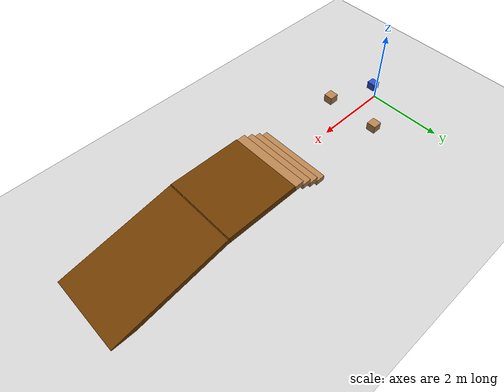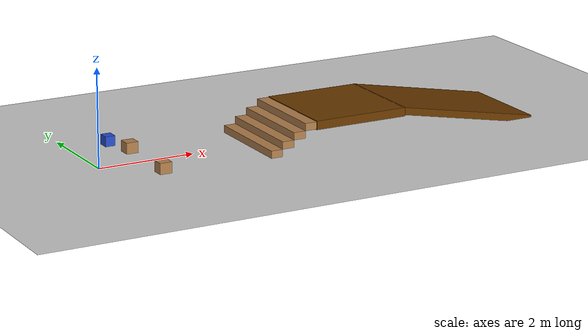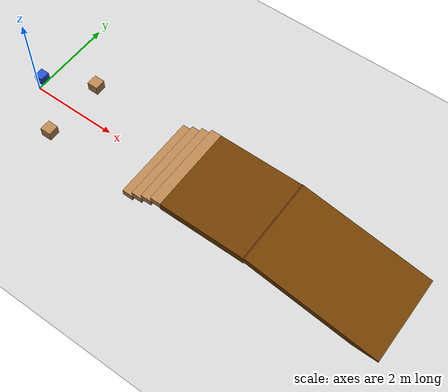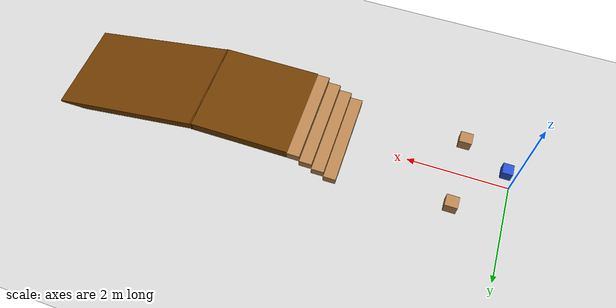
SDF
<?xml version="1.0" ?>
<sdf version="1.5">
    <world name="default">

        <physics type="ode">
        <max_step_size>0.001</max_step_size>
        <real_time_factor>1</real_time_factor>
        <real_time_update_rate>1000</real_time_update_rate>
        <gravity>0 0 -9.81</gravity>
            <ode>
                <solver>
                <type>quick</type>
                <iters>50</iters>
                <sor>1.3</sor>
                </solver>
                <constraints>
                <cfm>0.0</cfm>
                <erp>0.2</erp>
                <contact_max_correcting_vel>10.0</contact_max_correcting_vel>
                <contact_surface_layer>0.001</contact_surface_layer>
                </constraints>
            </ode>
        </physics>

        <scene>
        <sky>
            <clouds>
                <speed>12</speed>
            </clouds>
        </sky>
        </scene>
        <!-- A global light source -->
        <include>
            <uri>model://sun</uri>
        </include>
        <!-- A ground plane -->
        <include>
            <uri>model://ground_plane</uri>
        </include>
        <!-- environment blocks, obstacles or stairs -->

       <model name="static_environment">
        <static>true</static>

    <!-- ##################Box's########################################-->

         <link name="box_1">
                <pose>1 0.75 0.09 0 0 0</pose>
                <collision name="box1_collision">
                    <geometry>
                        <box>
                            <size>0.25 0.25 0.25</size>
                        </box>
                    </geometry>
                </collision>
                <visual name="box1_visual">
                    <geometry>
                        <box>
                            <size>0.25 0.25 0.25</size>
                        </box>
                    </geometry>
                <material>
                <script>
                    <uri>file://media/materials/scripts/gazebo.material</uri>
                    <name>Gazebo/Wood</name>
                </script>
                <ambient>1 1 1 1</ambient>
                </material>
                </visual>
            </link>

            <link name="box_2">
                <pose>1 -0.75 0.09 0 0 0</pose>
                <collision name="box2_collision">
                    <geometry>
                        <box>
                            <size>0.25 0.25 0.25</size>
                        </box>
                    </geometry>
                </collision>
                <visual name="box2_visual">
                    <geometry>
                        <box>
                            <size>0.25 0.25 0.25</size>
                        </box>
                    </geometry>
                    <material>
                    <script>
                        <uri>file://media/materials/scripts/gazebo.material</uri>
                        <name>Gazebo/Wood</name>
                    </script>
                    <ambient>1 1 1 1</ambient>
                    </material>
                </visual>
            </link>

<!-- ##################Stairs########################################-->

            <link name="floor3">
                <pose>5.2 0 0.525 0 0 0</pose>
                <collision name="floor3_collision">
                    <geometry>
                        <box>
                            <size>2 2 0.15</size>
                        </box>
                    </geometry>
                </collision>
                <visual name="floor3_visual">
                    <geometry>
                        <box>
                            <size>2 2 0.18</size>
                        </box>
                    </geometry>
                    <material>
                        <ambient>0.2 0.2 0.2 1.0</ambient>
                        <diffuse>.421 0.225 0.0 1.0</diffuse>
                    </material>
                </visual>
            </link>

        </model>

        <model name='stairs'>
    <pose frame=''>3.7 0.009 0 0 -0 0</pose>
    <link name='Stairs_1'>
      <visual name='Stairs_1_Visual_0'>
        <pose frame=''>-0.375 -0 0.075 0 -0 1.5708</pose>
        <geometry>
          <box>
            <size>2 0.25 0.15</size>
          </box>
        </geometry>
        <material>
          <script>
            <uri>file://media/materials/scripts/gazebo.material</uri>
            <name>Gazebo/Wood</name>
          </script>
          <ambient>1 1 1 1</ambient>
        </material>
        <meta>
          <layer>0</layer>
        </meta>
      </visual>
      <collision name='Stairs_1_Collision_0'>
        <geometry>
          <box>
            <size>2 0.25 0.15</size>
          </box>
        </geometry>
        <pose frame=''>-0.375 -0 0.075 0 -0 1.5708</pose>
      </collision>
      <visual name='Stairs_1_Visual_1'>
        <pose frame=''>-0.125 -0 0.225 0 -0 1.5708</pose>
        <geometry>
          <box>
            <size>2 0.25 0.15</size>
          </box>
        </geometry>
        <material>
          <script>
            <uri>file://media/materials/scripts/gazebo.material</uri>
            <name>Gazebo/Wood</name>
          </script>
          <ambient>1 1 1 1</ambient>
        </material>
        <meta>
          <layer>0</layer>
        </meta>
      </visual>
      <collision name='Stairs_1_Collision_1'>
        <geometry>
          <box>
            <size>2 0.25 0.15</size>
          </box>
        </geometry>
        <pose frame=''>-0.125 -0 0.225 0 -0 1.5708</pose>
      </collision>
      <visual name='Stairs_1_Visual_2'>
        <pose frame=''>0.125 0 0.375 0 -0 1.5708</pose>
        <geometry>
          <box>
            <size>2 0.25 0.15</size>
          </box>
        </geometry>
        <material>
          <script>
            <uri>file://media/materials/scripts/gazebo.material</uri>
            <name>Gazebo/Wood</name>
          </script>
          <ambient>1 1 1 1</ambient>
        </material>
        <meta>
          <layer>0</layer>
        </meta>
      </visual>
      <collision name='Stairs_1_Collision_2'>
        <geometry>
          <box>
            <size>2 0.25 0.15</size>
          </box>
        </geometry>
        <pose frame=''>0.125 0 0.375 0 -0 1.5708</pose>
      </collision>
      <visual name='Stairs_1_Visual_3'>
        <pose frame=''>0.375 0 0.525 0 -0 1.5708</pose>
        <geometry>
          <box>
            <size>2 0.25 0.15</size>
          </box>
        </geometry>
        <material>
          <script>
            <uri>file://media/materials/scripts/gazebo.material</uri>
            <name>Gazebo/Wood</name>
          </script>
          <ambient>1 1 1 1</ambient>
        </material>
        <meta>
          <layer>0</layer>
        </meta>
      </visual>
      <collision name='Stairs_1_Collision_3'>
        <geometry>
          <box>
            <size>2 0.25 0.15</size>
          </box>
        </geometry>
        <pose frame=''>0.375 0 0.525 0 -0 1.5708</pose>
      </collision>
    </link>

<!-- ##################Ramp########################################-->

    <link name="link">
        <pose>3.98 0 0.25 0 0.19 0</pose> <!-- X Y Z Roll Pitch Yaw: Adjust the pitch for the ramp tilt -->
        <collision name="ramp_collision">
            <geometry>
                <box>
                    <size>3.1 2 0.15</size> <!-- Length Width Height: Adjust the size as needed -->
                </box>
            </geometry>
        </collision>
        <visual name="ramp_visual">
            <geometry>
                <box>
                    <size>3.1 2 0.15</size> <!-- Length Width Height: Should match collision size -->
                </box>
            </geometry>
            <material>
                        <ambient>0.2 0.2 0.2 1.0</ambient>
                        <diffuse>.421 0.225 0.0 1.0</diffuse>
             </material>
        </visual>
    </link>

    <static>1</static>
  </model>

<!--###########Holding box#############################################################-->

<model name="carry_box">
    <static>false</static>
    <link name="link">
    <pose>0.2 0 0.55 0 0 0</pose>
        <collision name="collision">
            <geometry>
                <box>
                    <size>0.20 0.22 0.20</size> <!-- Change the size as needed -->
                </box>
            </geometry>
        </collision>
        <visual name="visual">
            <geometry>
                <box>
                    <size>0.20 0.22 0.20</size>
                </box>
            </geometry>
            <material>
                <script>
                    <uri>file://media/materials/scripts/gazebo.material</uri>
                    <name>Gazebo/Blue</name> <!-- Color of the box -->
                </script>
                <ambient>0.0 0.0 1.0 1</ambient>
            </material>
        </visual>
    </link>

</model>

    </world>
</sdf>
